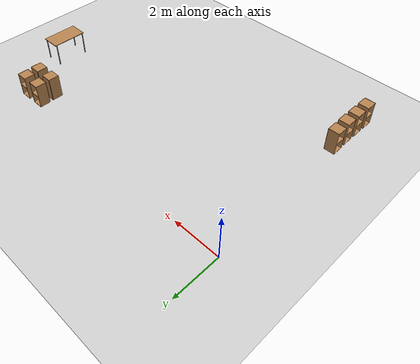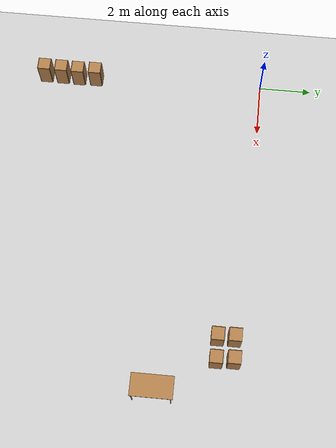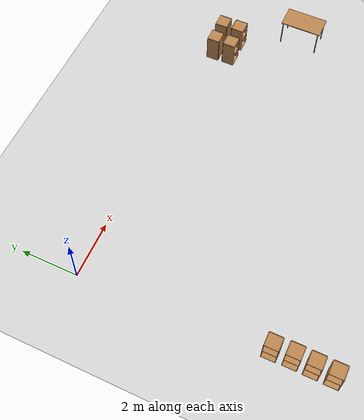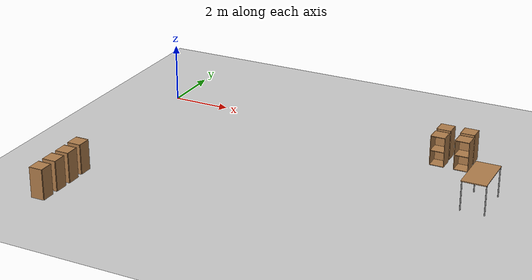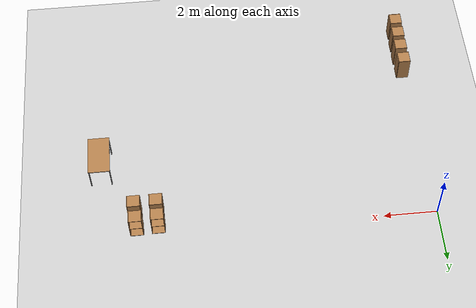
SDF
<sdf version="1.6">
 <world name="default">
  <model name="ground_plane">
   <static>1</static>
   <link name="link">
    <collision name="collision">
     <geometry><plane><normal>0 0 1</normal><size>100 100</size></plane></geometry>
     <surface>
      <contact><collide_bitmask>65535</collide_bitmask></contact>
      <friction><ode><mu>100</mu><mu2>50</mu2></ode></friction>
     </surface>
    </collision>
    <visual name="visual">
     <cast_shadows>0</cast_shadows>
     <geometry><plane><normal>0 0 1</normal><size>100 100</size></plane></geometry>
     <material>
      <script><uri>file://media/materials/scripts/gazebo.material</uri><name>Gazebo/Grey</name></script>
     </material>
    </visual>
   </link>
  </model>
  <model name="table_clone">
   <static>1</static>
   <link name="link">
    <collision name="surface">
     <pose>0 0 1 0 -0 0</pose>
     <geometry><box><size>1.5 0.8 0.03</size></box></geometry>
     <surface><friction><ode><mu>0.6</mu><mu2>0.6</mu2></ode></friction></surface>
    </collision>
    <visual name="visual1">
     <pose>0 0 1 0 -0 0</pose>
     <geometry><box><size>1.5 0.8 0.03</size></box></geometry>
     <material>
      <script><uri>file://media/materials/scripts/gazebo.material</uri><name>Gazebo/Wood</name></script>
     </material>
    </visual>
    <collision name="front_left_leg">
     <pose>0.68 0.38 0.5 0 -0 0</pose>
     <geometry><cylinder><radius>0.02</radius><length>1</length></cylinder></geometry>
    </collision>
    <visual name="front_left_leg">
     <pose>0.68 0.38 0.5 0 -0 0</pose>
     <geometry><cylinder><radius>0.02</radius><length>1</length></cylinder></geometry>
     <material>
      <script><uri>file://media/materials/scripts/gazebo.material</uri><name>Gazebo/Grey</name></script>
     </material>
    </visual>
    <collision name="front_right_leg">
     <pose>0.68 -0.38 0.5 0 -0 0</pose>
     <geometry><cylinder><radius>0.02</radius><length>1</length></cylinder></geometry>
    </collision>
    <visual name="front_right_leg">
     <pose>0.68 -0.38 0.5 0 -0 0</pose>
     <geometry><cylinder><radius>0.02</radius><length>1</length></cylinder></geometry>
     <material>
      <script><uri>file://media/materials/scripts/gazebo.material</uri><name>Gazebo/Grey</name></script>
     </material>
    </visual>
    <collision name="back_right_leg">
     <pose>-0.68 -0.38 0.5 0 -0 0</pose>
     <geometry><cylinder><radius>0.02</radius><length>1</length></cylinder></geometry>
    </collision>
    <visual name="back_right_leg">
     <pose>-0.68 -0.38 0.5 0 -0 0</pose>
     <geometry><cylinder><radius>0.02</radius><length>1</length></cylinder></geometry>
     <material>
      <script><uri>file://media/materials/scripts/gazebo.material</uri><name>Gazebo/Grey</name></script>
     </material>
    </visual>
    <collision name="back_left_leg">
     <pose>-0.68 0.38 0.5 0 -0 0</pose>
     <geometry><cylinder><radius>0.02</radius><length>1</length></cylinder></geometry>
    </collision>
    <visual name="back_left_leg">
     <pose>-0.68 0.38 0.5 0 -0 0</pose>
     <geometry><cylinder><radius>0.02</radius><length>1</length></cylinder></geometry>
     <material>
      <script><uri>file://media/materials/scripts/gazebo.material</uri><name>Gazebo/Grey</name></script>
     </material>
    </visual>
   </link>
   <pose>12.2907 -3.04832 0 0 -0 1.5707</pose>
  </model>
  <model name="cabinet_clone_7">
   <static>1</static>
   <link name="cabinet_bottom_plate">
    <inertial>
     <pose>0 0 -1 0 -0 0</pose>
     <inertia><ixx>2.05</ixx><ixy>0</ixy><ixz>0</ixz><iyy>2.05</iyy><iyz>0</iyz><izz>2.05</izz></inertia>
     <mass>25</mass>
    </inertial>
    <collision name="cabinet_bottom_plate_geom">
     <pose>0 0 0.01 0 -0 0</pose>
     <geometry><box><size>0.45 0.45 0.02</size></box></geometry>
    </collision>
    <visual name="cabinet_bottom_plate_geom_visual">
     <pose>0 0 0.01 0 -0 0</pose>
     <geometry><box><size>0.45 0.45 0.02</size></box></geometry>
     <material>
      <script><uri>file://media/materials/scripts/gazebo.material</uri><name>Gazebo/Wood</name></script>
     </material>
    </visual>
    <collision name="cabinet_bottom_plate_geom_cabinet_back_plate">
     <pose>0.235 0 0.51 0 -0 0</pose>
     <geometry><box><size>0.02 0.45 1.02</size></box></geometry>
    </collision>
    <visual name="cabinet_bottom_plate_geom_cabinet_back_plate_visual">
     <pose>0.235 0 0.51 0 -0 0</pose>
     <geometry><box><size>0.02 0.45 1.02</size></box></geometry>
     <material>
      <script><uri>file://media/materials/scripts/gazebo.material</uri><name>Gazebo/Wood</name></script>
     </material>
    </visual>
    <collision name="cabinet_bottom_plate_geom_cabinet_left_plate">
     <pose>0 0.235 0.51 0 -0 0</pose>
     <geometry><box><size>0.45 0.02 1.02</size></box></geometry>
    </collision>
    <visual name="cabinet_bottom_plate_geom_cabinet_left_plate_visual">
     <pose>0 0.235 0.51 0 -0 0</pose>
     <geometry><box><size>0.45 0.02 1.02</size></box></geometry>
     <material>
      <script><uri>file://media/materials/scripts/gazebo.material</uri><name>Gazebo/Wood</name></script>
     </material>
    </visual>
    <collision name="cabinet_bottom_plate_geom_cabinet_middle_plate">
     <pose>0 0 0.51 0 -0 0</pose>
     <geometry><box><size>0.45 0.45 0.02</size></box></geometry>
    </collision>
    <visual name="cabinet_bottom_plate_geom_cabinet_middle_plate_visual">
     <pose>0 0 0.51 0 -0 0</pose>
     <geometry><box><size>0.45 0.45 0.02</size></box></geometry>
     <material>
      <script><uri>file://media/materials/scripts/gazebo.material</uri><name>Gazebo/Wood</name></script>
     </material>
    </visual>
    <collision name="cabinet_bottom_plate_geom_cabinet_right_plate">
     <pose>0 -0.235 0.51 0 -0 0</pose>
     <geometry><box><size>0.45 0.02 1.02</size></box></geometry>
    </collision>
    <visual name="cabinet_bottom_plate_geom_cabinet_right_plate_visual">
     <pose>0 -0.235 0.51 0 -0 0</pose>
     <geometry><box><size>0.45 0.02 1.02</size></box></geometry>
     <material>
      <script><uri>file://media/materials/scripts/gazebo.material</uri><name>Gazebo/Wood</name></script>
     </material>
    </visual>
    <collision name="cabinet_bottom_plate_geom_cabinet_top_plate">
     <pose>0 0 1.01 0 -0 0</pose>
     <geometry><box><size>0.45 0.45 0.02</size></box></geometry>
    </collision>
    <visual name="cabinet_bottom_plate_geom_cabinet_top_plate_visual">
     <pose>0 0 1.01 0 -0 0</pose>
     <geometry><box><size>0.45 0.45 0.02</size></box></geometry>
     <material>
      <script><uri>file://media/materials/scripts/gazebo.material</uri><name>Gazebo/Wood</name></script>
     </material>
    </visual>
   </link>
   <pose>10.2723 -0.939094 0 0 -0 1.5707</pose>
  </model>
  <model name="cabinet_clone_7_clone">
   <static>1</static>
   <link name="cabinet_bottom_plate">
    <inertial>
     <pose>0 0 -1 0 -0 0</pose>
     <inertia><ixx>2.05</ixx><ixy>0</ixy><ixz>0</ixz><iyy>2.05</iyy><iyz>0</iyz><izz>2.05</izz></inertia>
     <mass>25</mass>
    </inertial>
    <collision name="cabinet_bottom_plate_geom">
     <pose>0 0 0.01 0 -0 0</pose>
     <geometry><box><size>0.45 0.45 0.02</size></box></geometry>
    </collision>
    <visual name="cabinet_bottom_plate_geom_visual">
     <pose>0 0 0.01 0 -0 0</pose>
     <geometry><box><size>0.45 0.45 0.02</size></box></geometry>
     <material>
      <script><uri>file://media/materials/scripts/gazebo.material</uri><name>Gazebo/Wood</name></script>
     </material>
    </visual>
    <collision name="cabinet_bottom_plate_geom_cabinet_back_plate">
     <pose>0.235 0 0.51 0 -0 0</pose>
     <geometry><box><size>0.02 0.45 1.02</size></box></geometry>
    </collision>
    <visual name="cabinet_bottom_plate_geom_cabinet_back_plate_visual">
     <pose>0.235 0 0.51 0 -0 0</pose>
     <geometry><box><size>0.02 0.45 1.02</size></box></geometry>
     <material>
      <script><uri>file://media/materials/scripts/gazebo.material</uri><name>Gazebo/Wood</name></script>
     </material>
    </visual>
    <collision name="cabinet_bottom_plate_geom_cabinet_left_plate">
     <pose>0 0.235 0.51 0 -0 0</pose>
     <geometry><box><size>0.45 0.02 1.02</size></box></geometry>
    </collision>
    <visual name="cabinet_bottom_plate_geom_cabinet_left_plate_visual">
     <pose>0 0.235 0.51 0 -0 0</pose>
     <geometry><box><size>0.45 0.02 1.02</size></box></geometry>
     <material>
      <script><uri>file://media/materials/scripts/gazebo.material</uri><name>Gazebo/Wood</name></script>
     </material>
    </visual>
    <collision name="cabinet_bottom_plate_geom_cabinet_middle_plate">
     <pose>0 0 0.51 0 -0 0</pose>
     <geometry><box><size>0.45 0.45 0.02</size></box></geometry>
    </collision>
    <visual name="cabinet_bottom_plate_geom_cabinet_middle_plate_visual">
     <pose>0 0 0.51 0 -0 0</pose>
     <geometry><box><size>0.45 0.45 0.02</size></box></geometry>
     <material>
      <script><uri>file://media/materials/scripts/gazebo.material</uri><name>Gazebo/Wood</name></script>
     </material>
    </visual>
    <collision name="cabinet_bottom_plate_geom_cabinet_right_plate">
     <pose>0 -0.235 0.51 0 -0 0</pose>
     <geometry><box><size>0.45 0.02 1.02</size></box></geometry>
    </collision>
    <visual name="cabinet_bottom_plate_geom_cabinet_right_plate_visual">
     <pose>0 -0.235 0.51 0 -0 0</pose>
     <geometry><box><size>0.45 0.02 1.02</size></box></geometry>
     <material>
      <script><uri>file://media/materials/scripts/gazebo.material</uri><name>Gazebo/Wood</name></script>
     </material>
    </visual>
    <collision name="cabinet_bottom_plate_geom_cabinet_top_plate">
     <pose>0 0 1.01 0 -0 0</pose>
     <geometry><box><size>0.45 0.45 0.02</size></box></geometry>
    </collision>
    <visual name="cabinet_bottom_plate_geom_cabinet_top_plate_visual">
     <pose>0 0 1.01 0 -0 0</pose>
     <geometry><box><size>0.45 0.45 0.02</size></box></geometry>
     <material>
      <script><uri>file://media/materials/scripts/gazebo.material</uri><name>Gazebo/Wood</name></script>
     </material>
    </visual>
   </link>
   <pose>11.0788 -0.934681 0 0 -0 1.5707</pose>
  </model>
  <model name="cabinet_clone_7_clone_0">
   <static>1</static>
   <link name="cabinet_bottom_plate">
    <inertial>
     <pose>0 0 -1 0 -0 0</pose>
     <inertia><ixx>2.05</ixx><ixy>0</ixy><ixz>0</ixz><iyy>2.05</iyy><iyz>0</iyz><izz>2.05</izz></inertia>
     <mass>25</mass>
    </inertial>
    <collision name="cabinet_bottom_plate_geom">
     <pose>0 0 0.01 0 -0 0</pose>
     <geometry><box><size>0.45 0.45 0.02</size></box></geometry>
    </collision>
    <visual name="cabinet_bottom_plate_geom_visual">
     <pose>0 0 0.01 0 -0 0</pose>
     <geometry><box><size>0.45 0.45 0.02</size></box></geometry>
     <material>
      <script><uri>file://media/materials/scripts/gazebo.material</uri><name>Gazebo/Wood</name></script>
     </material>
    </visual>
    <collision name="cabinet_bottom_plate_geom_cabinet_back_plate">
     <pose>0.235 0 0.51 0 -0 0</pose>
     <geometry><box><size>0.02 0.45 1.02</size></box></geometry>
    </collision>
    <visual name="cabinet_bottom_plate_geom_cabinet_back_plate_visual">
     <pose>0.235 0 0.51 0 -0 0</pose>
     <geometry><box><size>0.02 0.45 1.02</size></box></geometry>
     <material>
      <script><uri>file://media/materials/scripts/gazebo.material</uri><name>Gazebo/Wood</name></script>
     </material>
    </visual>
    <collision name="cabinet_bottom_plate_geom_cabinet_left_plate">
     <pose>0 0.235 0.51 0 -0 0</pose>
     <geometry><box><size>0.45 0.02 1.02</size></box></geometry>
    </collision>
    <visual name="cabinet_bottom_plate_geom_cabinet_left_plate_visual">
     <pose>0 0.235 0.51 0 -0 0</pose>
     <geometry><box><size>0.45 0.02 1.02</size></box></geometry>
     <material>
      <script><uri>file://media/materials/scripts/gazebo.material</uri><name>Gazebo/Wood</name></script>
     </material>
    </visual>
    <collision name="cabinet_bottom_plate_geom_cabinet_middle_plate">
     <pose>0 0 0.51 0 -0 0</pose>
     <geometry><box><size>0.45 0.45 0.02</size></box></geometry>
    </collision>
    <visual name="cabinet_bottom_plate_geom_cabinet_middle_plate_visual">
     <pose>0 0 0.51 0 -0 0</pose>
     <geometry><box><size>0.45 0.45 0.02</size></box></geometry>
     <material>
      <script><uri>file://media/materials/scripts/gazebo.material</uri><name>Gazebo/Wood</name></script>
     </material>
    </visual>
    <collision name="cabinet_bottom_plate_geom_cabinet_right_plate">
     <pose>0 -0.235 0.51 0 -0 0</pose>
     <geometry><box><size>0.45 0.02 1.02</size></box></geometry>
    </collision>
    <visual name="cabinet_bottom_plate_geom_cabinet_right_plate_visual">
     <pose>0 -0.235 0.51 0 -0 0</pose>
     <geometry><box><size>0.45 0.02 1.02</size></box></geometry>
     <material>
      <script><uri>file://media/materials/scripts/gazebo.material</uri><name>Gazebo/Wood</name></script>
     </material>
    </visual>
    <collision name="cabinet_bottom_plate_geom_cabinet_top_plate">
     <pose>0 0 1.01 0 -0 0</pose>
     <geometry><box><size>0.45 0.45 0.02</size></box></geometry>
    </collision>
    <visual name="cabinet_bottom_plate_geom_cabinet_top_plate_visual">
     <pose>0 0 1.01 0 -0 0</pose>
     <geometry><box><size>0.45 0.45 0.02</size></box></geometry>
     <material>
      <script><uri>file://media/materials/scripts/gazebo.material</uri><name>Gazebo/Wood</name></script>
     </material>
    </visual>
   </link>
   <pose>10.2552 -0.315251 0 0 0 -1.5707</pose>
  </model>
  <model name="cabinet_clone_7_clone_0_clone">
   <static>1</static>
   <link name="cabinet_bottom_plate">
    <inertial>
     <pose>0 0 -1 0 -0 0</pose>
     <inertia><ixx>2.05</ixx><ixy>0</ixy><ixz>0</ixz><iyy>2.05</iyy><iyz>0</iyz><izz>2.05</izz></inertia>
     <mass>25</mass>
    </inertial>
    <collision name="cabinet_bottom_plate_geom">
     <pose>0 0 0.01 0 -0 0</pose>
     <geometry><box><size>0.45 0.45 0.02</size></box></geometry>
    </collision>
    <visual name="cabinet_bottom_plate_geom_visual">
     <pose>0 0 0.01 0 -0 0</pose>
     <geometry><box><size>0.45 0.45 0.02</size></box></geometry>
     <material>
      <script><uri>file://media/materials/scripts/gazebo.material</uri><name>Gazebo/Wood</name></script>
     </material>
    </visual>
    <collision name="cabinet_bottom_plate_geom_cabinet_back_plate">
     <pose>0.235 0 0.51 0 -0 0</pose>
     <geometry><box><size>0.02 0.45 1.02</size></box></geometry>
    </collision>
    <visual name="cabinet_bottom_plate_geom_cabinet_back_plate_visual">
     <pose>0.235 0 0.51 0 -0 0</pose>
     <geometry><box><size>0.02 0.45 1.02</size></box></geometry>
     <material>
      <script><uri>file://media/materials/scripts/gazebo.material</uri><name>Gazebo/Wood</name></script>
     </material>
    </visual>
    <collision name="cabinet_bottom_plate_geom_cabinet_left_plate">
     <pose>0 0.235 0.51 0 -0 0</pose>
     <geometry><box><size>0.45 0.02 1.02</size></box></geometry>
    </collision>
    <visual name="cabinet_bottom_plate_geom_cabinet_left_plate_visual">
     <pose>0 0.235 0.51 0 -0 0</pose>
     <geometry><box><size>0.45 0.02 1.02</size></box></geometry>
     <material>
      <script><uri>file://media/materials/scripts/gazebo.material</uri><name>Gazebo/Wood</name></script>
     </material>
    </visual>
    <collision name="cabinet_bottom_plate_geom_cabinet_middle_plate">
     <pose>0 0 0.51 0 -0 0</pose>
     <geometry><box><size>0.45 0.45 0.02</size></box></geometry>
    </collision>
    <visual name="cabinet_bottom_plate_geom_cabinet_middle_plate_visual">
     <pose>0 0 0.51 0 -0 0</pose>
     <geometry><box><size>0.45 0.45 0.02</size></box></geometry>
     <material>
      <script><uri>file://media/materials/scripts/gazebo.material</uri><name>Gazebo/Wood</name></script>
     </material>
    </visual>
    <collision name="cabinet_bottom_plate_geom_cabinet_right_plate">
     <pose>0 -0.235 0.51 0 -0 0</pose>
     <geometry><box><size>0.45 0.02 1.02</size></box></geometry>
    </collision>
    <visual name="cabinet_bottom_plate_geom_cabinet_right_plate_visual">
     <pose>0 -0.235 0.51 0 -0 0</pose>
     <geometry><box><size>0.45 0.02 1.02</size></box></geometry>
     <material>
      <script><uri>file://media/materials/scripts/gazebo.material</uri><name>Gazebo/Wood</name></script>
     </material>
    </visual>
    <collision name="cabinet_bottom_plate_geom_cabinet_top_plate">
     <pose>0 0 1.01 0 -0 0</pose>
     <geometry><box><size>0.45 0.45 0.02</size></box></geometry>
    </collision>
    <visual name="cabinet_bottom_plate_geom_cabinet_top_plate_visual">
     <pose>0 0 1.01 0 -0 0</pose>
     <geometry><box><size>0.45 0.45 0.02</size></box></geometry>
     <material>
      <script><uri>file://media/materials/scripts/gazebo.material</uri><name>Gazebo/Wood</name></script>
     </material>
    </visual>
   </link>
   <pose>11.046 -0.292622 0 0 0 -1.5707</pose>
  </model>
  <model name="cabinet_clone_7_clone_0_clone_0">
   <static>1</static>
   <link name="cabinet_bottom_plate">
    <inertial>
     <pose>0 0 -1 0 -0 0</pose>
     <inertia><ixx>2.05</ixx><ixy>0</ixy><ixz>0</ixz><iyy>2.05</iyy><iyz>0</iyz><izz>2.05</izz></inertia>
     <mass>25</mass>
    </inertial>
    <collision name="cabinet_bottom_plate_geom">
     <pose>0 0 0.01 0 -0 0</pose>
     <geometry><box><size>0.45 0.45 0.02</size></box></geometry>
    </collision>
    <visual name="cabinet_bottom_plate_geom_visual">
     <pose>0 0 0.01 0 -0 0</pose>
     <geometry><box><size>0.45 0.45 0.02</size></box></geometry>
     <material>
      <script><uri>file://media/materials/scripts/gazebo.material</uri><name>Gazebo/Wood</name></script>
     </material>
    </visual>
    <collision name="cabinet_bottom_plate_geom_cabinet_back_plate">
     <pose>0.235 0 0.51 0 -0 0</pose>
     <geometry><box><size>0.02 0.45 1.02</size></box></geometry>
    </collision>
    <visual name="cabinet_bottom_plate_geom_cabinet_back_plate_visual">
     <pose>0.235 0 0.51 0 -0 0</pose>
     <geometry><box><size>0.02 0.45 1.02</size></box></geometry>
     <material>
      <script><uri>file://media/materials/scripts/gazebo.material</uri><name>Gazebo/Wood</name></script>
     </material>
    </visual>
    <collision name="cabinet_bottom_plate_geom_cabinet_left_plate">
     <pose>0 0.235 0.51 0 -0 0</pose>
     <geometry><box><size>0.45 0.02 1.02</size></box></geometry>
    </collision>
    <visual name="cabinet_bottom_plate_geom_cabinet_left_plate_visual">
     <pose>0 0.235 0.51 0 -0 0</pose>
     <geometry><box><size>0.45 0.02 1.02</size></box></geometry>
     <material>
      <script><uri>file://media/materials/scripts/gazebo.material</uri><name>Gazebo/Wood</name></script>
     </material>
    </visual>
    <collision name="cabinet_bottom_plate_geom_cabinet_middle_plate">
     <pose>0 0 0.51 0 -0 0</pose>
     <geometry><box><size>0.45 0.45 0.02</size></box></geometry>
    </collision>
    <visual name="cabinet_bottom_plate_geom_cabinet_middle_plate_visual">
     <pose>0 0 0.51 0 -0 0</pose>
     <geometry><box><size>0.45 0.45 0.02</size></box></geometry>
     <material>
      <script><uri>file://media/materials/scripts/gazebo.material</uri><name>Gazebo/Wood</name></script>
     </material>
    </visual>
    <collision name="cabinet_bottom_plate_geom_cabinet_right_plate">
     <pose>0 -0.235 0.51 0 -0 0</pose>
     <geometry><box><size>0.45 0.02 1.02</size></box></geometry>
    </collision>
    <visual name="cabinet_bottom_plate_geom_cabinet_right_plate_visual">
     <pose>0 -0.235 0.51 0 -0 0</pose>
     <geometry><box><size>0.45 0.02 1.02</size></box></geometry>
     <material>
      <script><uri>file://media/materials/scripts/gazebo.material</uri><name>Gazebo/Wood</name></script>
     </material>
    </visual>
    <collision name="cabinet_bottom_plate_geom_cabinet_top_plate">
     <pose>0 0 1.01 0 -0 0</pose>
     <geometry><box><size>0.45 0.45 0.02</size></box></geometry>
    </collision>
    <visual name="cabinet_bottom_plate_geom_cabinet_top_plate_visual">
     <pose>0 0 1.01 0 -0 0</pose>
     <geometry><box><size>0.45 0.45 0.02</size></box></geometry>
     <material>
      <script><uri>file://media/materials/scripts/gazebo.material</uri><name>Gazebo/Wood</name></script>
     </material>
    </visual>
   </link>
   <pose>0.23164 -8.52148 0 0 -0 0</pose>
  </model>
  <model name="cabinet_clone_7_clone_0_clone_0_clone">
   <static>1</static>
   <link name="cabinet_bottom_plate">
    <inertial>
     <pose>0 0 -1 0 -0 0</pose>
     <inertia><ixx>2.05</ixx><ixy>0</ixy><ixz>0</ixz><iyy>2.05</iyy><iyz>0</iyz><izz>2.05</izz></inertia>
     <mass>25</mass>
    </inertial>
    <collision name="cabinet_bottom_plate_geom">
     <pose>0 0 0.01 0 -0 0</pose>
     <geometry><box><size>0.45 0.45 0.02</size></box></geometry>
    </collision>
    <visual name="cabinet_bottom_plate_geom_visual">
     <pose>0 0 0.01 0 -0 0</pose>
     <geometry><box><size>0.45 0.45 0.02</size></box></geometry>
     <material>
      <script><uri>file://media/materials/scripts/gazebo.material</uri><name>Gazebo/Wood</name></script>
     </material>
    </visual>
    <collision name="cabinet_bottom_plate_geom_cabinet_back_plate">
     <pose>0.235 0 0.51 0 -0 0</pose>
     <geometry><box><size>0.02 0.45 1.02</size></box></geometry>
    </collision>
    <visual name="cabinet_bottom_plate_geom_cabinet_back_plate_visual">
     <pose>0.235 0 0.51 0 -0 0</pose>
     <geometry><box><size>0.02 0.45 1.02</size></box></geometry>
     <material>
      <script><uri>file://media/materials/scripts/gazebo.material</uri><name>Gazebo/Wood</name></script>
     </material>
    </visual>
    <collision name="cabinet_bottom_plate_geom_cabinet_left_plate">
     <pose>0 0.235 0.51 0 -0 0</pose>
     <geometry><box><size>0.45 0.02 1.02</size></box></geometry>
    </collision>
    <visual name="cabinet_bottom_plate_geom_cabinet_left_plate_visual">
     <pose>0 0.235 0.51 0 -0 0</pose>
     <geometry><box><size>0.45 0.02 1.02</size></box></geometry>
     <material>
      <script><uri>file://media/materials/scripts/gazebo.material</uri><name>Gazebo/Wood</name></script>
     </material>
    </visual>
    <collision name="cabinet_bottom_plate_geom_cabinet_middle_plate">
     <pose>0 0 0.51 0 -0 0</pose>
     <geometry><box><size>0.45 0.45 0.02</size></box></geometry>
    </collision>
    <visual name="cabinet_bottom_plate_geom_cabinet_middle_plate_visual">
     <pose>0 0 0.51 0 -0 0</pose>
     <geometry><box><size>0.45 0.45 0.02</size></box></geometry>
     <material>
      <script><uri>file://media/materials/scripts/gazebo.material</uri><name>Gazebo/Wood</name></script>
     </material>
    </visual>
    <collision name="cabinet_bottom_plate_geom_cabinet_right_plate">
     <pose>0 -0.235 0.51 0 -0 0</pose>
     <geometry><box><size>0.45 0.02 1.02</size></box></geometry>
    </collision>
    <visual name="cabinet_bottom_plate_geom_cabinet_right_plate_visual">
     <pose>0 -0.235 0.51 0 -0 0</pose>
     <geometry><box><size>0.45 0.02 1.02</size></box></geometry>
     <material>
      <script><uri>file://media/materials/scripts/gazebo.material</uri><name>Gazebo/Wood</name></script>
     </material>
    </visual>
    <collision name="cabinet_bottom_plate_geom_cabinet_top_plate">
     <pose>0 0 1.01 0 -0 0</pose>
     <geometry><box><size>0.45 0.45 0.02</size></box></geometry>
    </collision>
    <visual name="cabinet_bottom_plate_geom_cabinet_top_plate_visual">
     <pose>0 0 1.01 0 -0 0</pose>
     <geometry><box><size>0.45 0.45 0.02</size></box></geometry>
     <material>
      <script><uri>file://media/materials/scripts/gazebo.material</uri><name>Gazebo/Wood</name></script>
     </material>
    </visual>
   </link>
   <pose>0.240349 -7.86002 0 0 -0 0</pose>
  </model>
  <model name="cabinet_clone_7_clone_0_clone_0_clone_0">
   <static>1</static>
   <link name="cabinet_bottom_plate">
    <inertial>
     <pose>0 0 -1 0 -0 0</pose>
     <inertia><ixx>2.05</ixx><ixy>0</ixy><ixz>0</ixz><iyy>2.05</iyy><iyz>0</iyz><izz>2.05</izz></inertia>
     <mass>25</mass>
    </inertial>
    <collision name="cabinet_bottom_plate_geom">
     <pose>0 0 0.01 0 -0 0</pose>
     <geometry><box><size>0.45 0.45 0.02</size></box></geometry>
    </collision>
    <visual name="cabinet_bottom_plate_geom_visual">
     <pose>0 0 0.01 0 -0 0</pose>
     <geometry><box><size>0.45 0.45 0.02</size></box></geometry>
     <material>
      <script><uri>file://media/materials/scripts/gazebo.material</uri><name>Gazebo/Wood</name></script>
     </material>
    </visual>
    <collision name="cabinet_bottom_plate_geom_cabinet_back_plate">
     <pose>0.235 0 0.51 0 -0 0</pose>
     <geometry><box><size>0.02 0.45 1.02</size></box></geometry>
    </collision>
    <visual name="cabinet_bottom_plate_geom_cabinet_back_plate_visual">
     <pose>0.235 0 0.51 0 -0 0</pose>
     <geometry><box><size>0.02 0.45 1.02</size></box></geometry>
     <material>
      <script><uri>file://media/materials/scripts/gazebo.material</uri><name>Gazebo/Wood</name></script>
     </material>
    </visual>
    <collision name="cabinet_bottom_plate_geom_cabinet_left_plate">
     <pose>0 0.235 0.51 0 -0 0</pose>
     <geometry><box><size>0.45 0.02 1.02</size></box></geometry>
    </collision>
    <visual name="cabinet_bottom_plate_geom_cabinet_left_plate_visual">
     <pose>0 0.235 0.51 0 -0 0</pose>
     <geometry><box><size>0.45 0.02 1.02</size></box></geometry>
     <material>
      <script><uri>file://media/materials/scripts/gazebo.material</uri><name>Gazebo/Wood</name></script>
     </material>
    </visual>
    <collision name="cabinet_bottom_plate_geom_cabinet_middle_plate">
     <pose>0 0 0.51 0 -0 0</pose>
     <geometry><box><size>0.45 0.45 0.02</size></box></geometry>
    </collision>
    <visual name="cabinet_bottom_plate_geom_cabinet_middle_plate_visual">
     <pose>0 0 0.51 0 -0 0</pose>
     <geometry><box><size>0.45 0.45 0.02</size></box></geometry>
     <material>
      <script><uri>file://media/materials/scripts/gazebo.material</uri><name>Gazebo/Wood</name></script>
     </material>
    </visual>
    <collision name="cabinet_bottom_plate_geom_cabinet_right_plate">
     <pose>0 -0.235 0.51 0 -0 0</pose>
     <geometry><box><size>0.45 0.02 1.02</size></box></geometry>
    </collision>
    <visual name="cabinet_bottom_plate_geom_cabinet_right_plate_visual">
     <pose>0 -0.235 0.51 0 -0 0</pose>
     <geometry><box><size>0.45 0.02 1.02</size></box></geometry>
     <material>
      <script><uri>file://media/materials/scripts/gazebo.material</uri><name>Gazebo/Wood</name></script>
     </material>
    </visual>
    <collision name="cabinet_bottom_plate_geom_cabinet_top_plate">
     <pose>0 0 1.01 0 -0 0</pose>
     <geometry><box><size>0.45 0.45 0.02</size></box></geometry>
    </collision>
    <visual name="cabinet_bottom_plate_geom_cabinet_top_plate_visual">
     <pose>0 0 1.01 0 -0 0</pose>
     <geometry><box><size>0.45 0.45 0.02</size></box></geometry>
     <material>
      <script><uri>file://media/materials/scripts/gazebo.material</uri><name>Gazebo/Wood</name></script>
     </material>
    </visual>
   </link>
   <pose>0.248297 -7.20779 0 0 -0 0</pose>
  </model>
  <model name="cabinet_clone_7_clone_0_clone_0_clone_1">
   <static>1</static>
   <link name="cabinet_bottom_plate">
    <inertial>
     <pose>0 0 -1 0 -0 0</pose>
     <inertia><ixx>2.05</ixx><ixy>0</ixy><ixz>0</ixz><iyy>2.05</iyy><iyz>0</iyz><izz>2.05</izz></inertia>
     <mass>25</mass>
    </inertial>
    <collision name="cabinet_bottom_plate_geom">
     <pose>0 0 0.01 0 -0 0</pose>
     <geometry><box><size>0.45 0.45 0.02</size></box></geometry>
    </collision>
    <visual name="cabinet_bottom_plate_geom_visual">
     <pose>0 0 0.01 0 -0 0</pose>
     <geometry><box><size>0.45 0.45 0.02</size></box></geometry>
     <material>
      <script><uri>file://media/materials/scripts/gazebo.material</uri><name>Gazebo/Wood</name></script>
     </material>
    </visual>
    <collision name="cabinet_bottom_plate_geom_cabinet_back_plate">
     <pose>0.235 0 0.51 0 -0 0</pose>
     <geometry><box><size>0.02 0.45 1.02</size></box></geometry>
    </collision>
    <visual name="cabinet_bottom_plate_geom_cabinet_back_plate_visual">
     <pose>0.235 0 0.51 0 -0 0</pose>
     <geometry><box><size>0.02 0.45 1.02</size></box></geometry>
     <material>
      <script><uri>file://media/materials/scripts/gazebo.material</uri><name>Gazebo/Wood</name></script>
     </material>
    </visual>
    <collision name="cabinet_bottom_plate_geom_cabinet_left_plate">
     <pose>0 0.235 0.51 0 -0 0</pose>
     <geometry><box><size>0.45 0.02 1.02</size></box></geometry>
    </collision>
    <visual name="cabinet_bottom_plate_geom_cabinet_left_plate_visual">
     <pose>0 0.235 0.51 0 -0 0</pose>
     <geometry><box><size>0.45 0.02 1.02</size></box></geometry>
     <material>
      <script><uri>file://media/materials/scripts/gazebo.material</uri><name>Gazebo/Wood</name></script>
     </material>
    </visual>
    <collision name="cabinet_bottom_plate_geom_cabinet_middle_plate">
     <pose>0 0 0.51 0 -0 0</pose>
     <geometry><box><size>0.45 0.45 0.02</size></box></geometry>
    </collision>
    <visual name="cabinet_bottom_plate_geom_cabinet_middle_plate_visual">
     <pose>0 0 0.51 0 -0 0</pose>
     <geometry><box><size>0.45 0.45 0.02</size></box></geometry>
     <material>
      <script><uri>file://media/materials/scripts/gazebo.material</uri><name>Gazebo/Wood</name></script>
     </material>
    </visual>
    <collision name="cabinet_bottom_plate_geom_cabinet_right_plate">
     <pose>0 -0.235 0.51 0 -0 0</pose>
     <geometry><box><size>0.45 0.02 1.02</size></box></geometry>
    </collision>
    <visual name="cabinet_bottom_plate_geom_cabinet_right_plate_visual">
     <pose>0 -0.235 0.51 0 -0 0</pose>
     <geometry><box><size>0.45 0.02 1.02</size></box></geometry>
     <material>
      <script><uri>file://media/materials/scripts/gazebo.material</uri><name>Gazebo/Wood</name></script>
     </material>
    </visual>
    <collision name="cabinet_bottom_plate_geom_cabinet_top_plate">
     <pose>0 0 1.01 0 -0 0</pose>
     <geometry><box><size>0.45 0.45 0.02</size></box></geometry>
    </collision>
    <visual name="cabinet_bottom_plate_geom_cabinet_top_plate_visual">
     <pose>0 0 1.01 0 -0 0</pose>
     <geometry><box><size>0.45 0.45 0.02</size></box></geometry>
     <material>
      <script><uri>file://media/materials/scripts/gazebo.material</uri><name>Gazebo/Wood</name></script>
     </material>
    </visual>
   </link>
   <pose>0.231024 -6.53422 0 0 -0 0</pose>
  </model>
 </world>
</sdf>
